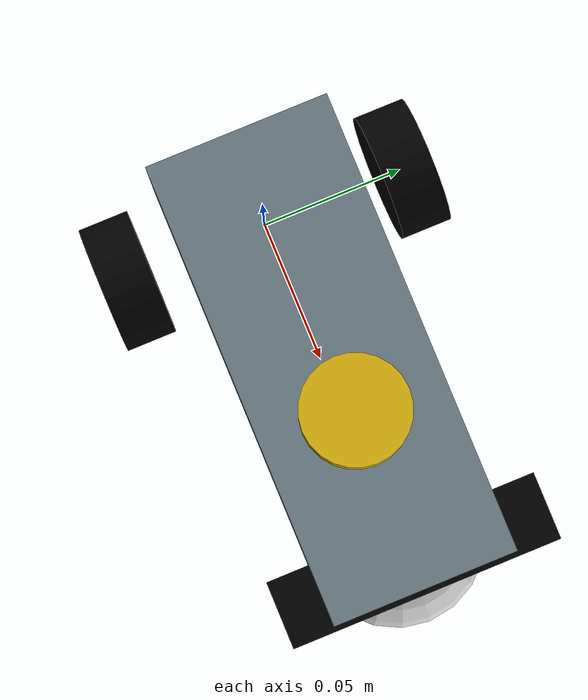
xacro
<?xml version="1.0"?>
<robot xmlns:xacro="http://www.ros.org/wiki/xacro"  name="robot">
    <xacro:arg name="use_ros2_control" default="true"/>
    <xacro:arg name="sim_mode" default="false"/>

    <xacro:include filename="robot_core.xacro"/>
    <xacro:include filename="robot_gazebo_color.gazebo.xacro"/>
    <xacro:include filename="camera.xacro"/>
        <xacro:include filename="ros2_control.xacro" />
    <xacro:include filename="ld19.xacro"/>

</robot>

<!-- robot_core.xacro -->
<robot xmlns:xacro="http://www.ros.org/wiki/xacro">

    <xacro:include filename="inertial_macros.xacro"/>

    <material name="grey">
        <color rgba="0.4196078431372549 0.48627450980392156 0.5215686274509804 1.0"/>
    </material>

    <material name="orange">
        <color rgba="1 0.3 0.1 1"/>
    </material>

    <material name="black">
        <color rgba="0 0 0 1"/>
    </material>

    <material name="white">
        <color rgba="1 1 1 1"/>
    </material>

    <material name="red">
        <color rgba="0.8980392156862745 0.0 0.0 1.0"/>
    </material>

    <material name="gold">
        <color rgba="0.8588235294117647 0.7058823529411765 0.047058823529411764 1.0"/>
    </material>

      <!-- BASE LINK-->
    <link name="base_link">

    </link>

     <!-- BASE_FOOTPRINT LINK -->
    <joint name="base_footprint_joint" type="fixed">
        <parent link="base_link"/>
        <child link="base_footprint"/>
        <origin xyz="0 0 -0.02961" rpy="0 0 0"/>
    </joint>

    <link name="base_footprint">
    </link>

    <!-- CHASSIS LINK-->
    <joint name="Chassis_joint" type="fixed">
        <parent link="base_link"/>
        <child link="chassis"/>
        <origin xyz="-0.02065 0 0.00792"/>
    </joint>

    <link name="chassis">
        <visual>
        <origin xyz="0.078185 0 0.0458"/>
            <geometry>
                <box size="0.15637 0.062 0.060"/>
            </geometry>
            <material name="grey"></material>
        </visual>
        <collision>
        <origin xyz="0.078185 0 0.0458"/>
            <geometry>
                <box size="0.15637 0.062 0.060"/>
            </geometry>
        </collision>
        <xacro:inertial_box mass="0.567" x="0.15637" y="0.062" z="0.060">
            <origin xyz="0.078185 0 0.0458" rpy="0 0 0"/>
        </xacro:inertial_box>
    </link>

    <!-- Left Wheel-->
    <joint name="left_wheel_joint" type="continuous">
        <parent link="base_link"/>
        <child link="left_wheel"/>
        <origin xyz="0 0.051115 0" rpy="-${pi/2} 0 0"/>
        <axis xyz="0.0 0.0 1"/>
    </joint>

    <link name="left_wheel">
        <visual>
            <geometry>
                <cylinder radius="0.0225" length="0.01775"/>
            </geometry>
            <material name="black"></material>
        </visual>
        <collision>
            <geometry>
                <cylinder radius="0.0225" length="0.01775"/>
            </geometry>
        </collision>
        <xacro:inertial_cylinder mass="0.01622" length="0.01775" radius="0.0215">
            <origin xyz="0 0 0" rpy="0 0 0"/>
        </xacro:inertial_cylinder>
    </link>

    <!-- Right Wheel-->
    <joint name="right_wheel_joint" type="continuous">
        <parent link="base_link"/>
        <child link="right_wheel"/>
        <origin xyz="0 -0.051115 0" rpy="${pi/2} 0 0"/>
        <axis xyz="0.0 0.0 -1"/>
    </joint>

    <link name="right_wheel">
        <visual>
            <geometry>
                <cylinder radius="0.0225" length="0.01775"/>
            </geometry>
            <material name="black"></material>
        </visual>
        <collision>
            <geometry>
                <cylinder radius="0.0225" length="0.01775"/>
            </geometry>
        </collision>
        <xacro:inertial_cylinder mass="0.01622" length="0.01775" radius="0.0215">
            <origin xyz="0 0 0" rpy="0 0 0"/>
        </xacro:inertial_cylinder>
    </link>

    <!-- Caster Wheel-->
    <joint name="caster_wheel_joint" type="fixed">
        <parent link="chassis"/>
        <child link="caster_wheel"/>
        <origin xyz="0.13737 0 0"/>
    </joint>

    <link name="caster_wheel">
        <visual>
                <geometry>
                    <sphere radius="0.03054"/>
                </geometry>
            <material name="white"></material>
        </visual>
        <collision>
                <geometry>
                    <sphere radius="0.03054"/>
                </geometry>
        </collision>
        <xacro:inertial_sphere mass="0.01" radius="0.03054">
            <origin xyz="0 0 0" rpy="0 0 0"/>
        </xacro:inertial_sphere >
    </link>

</robot>

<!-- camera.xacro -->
<robot xmlns:xacro="http://www.ros.org/wiki/xacro"  name="robot">

    <joint name="camera_joint" type="fixed">
        <parent link="chassis"/>
        <child link="camera_link"/>
        <origin xyz="0.14688 0 0.05916" rpy="0 0 0"/>
    </joint>

    <link name="camera_link">
        <visual>
            <geometry>
                <box size="0.0225 0.09075 0.0265"/>
            </geometry>
            <material name="black"></material>
        </visual>
        <collision>
        <origin xyz="0.078185 0 0.0458"/>
            <geometry>
                <box size="0.0225 0.09075 0.0265"/>
            </geometry>
        </collision>
    </link>

    <joint name="camera_optical_joint" type="fixed">
        <parent link="camera_link"/>
        <child link="camera_link_optical"/>
        <origin xyz="0 0 0" rpy="${-pi/2} 0 ${-pi/2}"/>

    </joint>

    <link name="camera_link_optical">
    </link>

     <gazebo reference="camera_link">
        <sensor name="camera" type="camera">
            <pose> 0 0 0 0 0 0 </pose>
            <visualize>true</visualize>
            <update_rate>10</update_rate>
            <camera>
                <horizontal_fov>1.5708</horizontal_fov>
                <image>
                    <format>R8G8B8</format>
                    <width>1920</width>
                    <height>1080</height>
                </image>
                <clip>
                    <near>0.05</near>
                    <far>8.0</far>
                </clip>
            </camera>
            <plugin name="camera_controller" filename="libgazebo_ros_camera.so">
                <frame_name>camera_link_optical</frame_name>
            </plugin>
        </sensor>
    </gazebo>

</robot>

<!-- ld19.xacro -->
<robot xmlns:xacro="http://www.ros.org/wiki/xacro"  name="robot">

    <joint name="laser_joint" type="fixed">
        <parent link="base_link"/>
        <child link="base_laser"/>
        <origin xyz="0.07725 0 0.1051" rpy="0 0 ${pi/2}"/>
    </joint>

    <link name="base_laser">
        <visual>
            <geometry>
                <cylinder radius="0.01765" length="0.0125"/>
            </geometry>
            <material name="gold"></material>
        </visual>
        <collision>
            <geometry>
                <cylinder radius="0.01765" length="0.0125"/>
            </geometry>
        </collision>
        <xacro:inertial_cylinder mass="0.0477" length="0.0125" radius="0.01765">
            <origin xyz="0 0 0" rpy="0 0 0"/>
        </xacro:inertial_cylinder>
    </link>

</robot>
